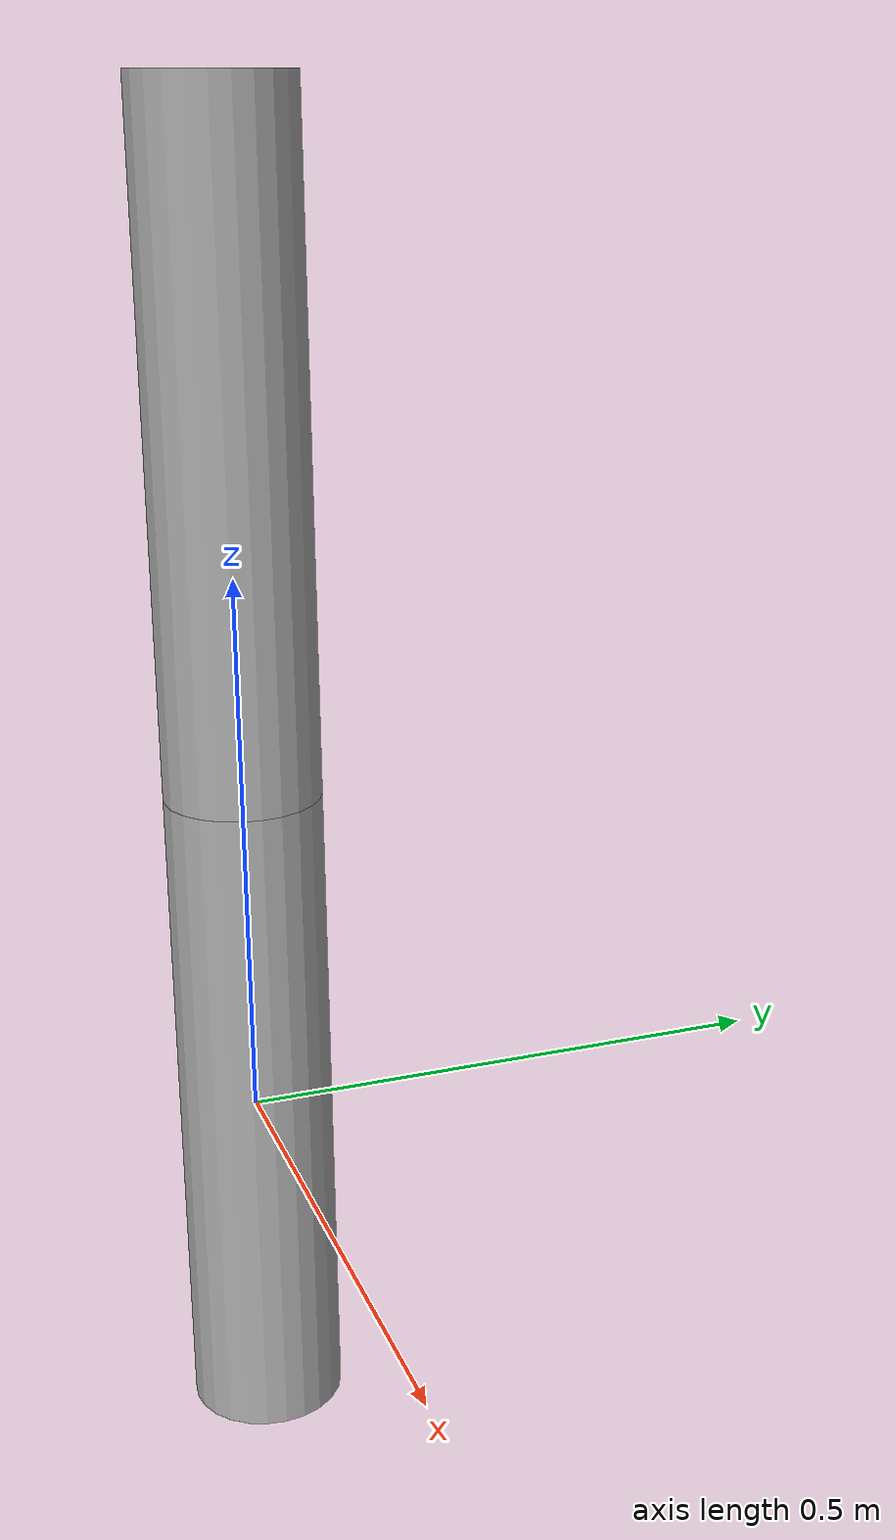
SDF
<?xml version="1.0" encoding="UTF-8"?>
<sdf version='1.8'>
  <model name='rocket_base'>
    <pose>0 0 0 0 0 0</pose>
    <link name='rocket_base_link'>
      <pose>0 0 0 0 0 0</pose>
      <inertial>
       <pose>0 0 0 0 0 0</pose>
       <mass>1.899</mass>
       <inertia>
         <ixx>0.14212</ixx>
         <ixy>0</ixy>
         <ixz>0</ixz>
         <iyy>0.14212</iyy>
         <iyz>0</iyz>
         <izz>0.00047</izz>
       </inertia>
      </inertial>
      <velocity_decay>
        <linear>0.01</linear>
        <angular>0.005</angular>
      </velocity_decay>
      <collision name='rocket_base_collision'>
        <pose>0 0 0 0 0 0</pose>
        <geometry>
          <cylinder>
            <radius>0.07036</radius>
            <length>0.6096</length>
          </cylinder>
        </geometry>
        <surface>
          <contact>
            <ode>
              <kp>1e6</kp>
              <kd>100.0</kd>
              <max_vel>0.01</max_vel>
              <min_depth>0.001</min_depth>
            </ode>
          </contact>
        </surface>
      </collision>
      <visual name='rocket_base_visual'>
        <pose>0 0 0 0 0 0</pose>
        <geometry>
          <cylinder>
            <radius>0.07036</radius>
            <length>0.6096</length>
          </cylinder>
       </geometry>
      </visual>
    </link>

    <link name='rocket_payload_link'>
      <pose>0 0 0.6096 0 0 0</pose>
      <inertial>
        <pose>0 0 0 0 0 0</pose>
        <mass>0.425</mass>
        <inertia>
          <ixx>0.01463</ixx>
          <ixy>0</ixy>
          <ixz>0</ixz>
          <iyy>0.01463</iyy>
          <iyz>0</iyz>
          <izz>0.001992</izz>
        </inertia>
      </inertial>
      <collision name='rocket_payload_collsion_wall_0'>
        <pose>0 0.068429 0 0 0 0</pose>
        <geometry>
          <box>
            <size>0.140716 0.003858 0.6096</size>
          </box>
        </geometry>
        <surface>
          <contact>
            <ode>
              <kp>1e6</kp>
              <kd>100.0</kd>
              <max_vel>0.01</max_vel>
              <min_depth>0.001</min_depth>
            </ode>
          </contact>
        </surface>
      </collision>
      <collision name='rocket_payload_collsion_wall_1'>
        <pose>-0.068429 0 0 0 0 1.57</pose>
        <geometry>
          <box>
            <size>0.140716 0.003858 0.6096</size>
          </box>
        </geometry>
        <surface>
          <contact>
            <ode>
              <kp>1e6</kp>
              <kd>100.0</kd>
              <max_vel>0.01</max_vel>
              <min_depth>0.001</min_depth>
            </ode>
          </contact>
        </surface>
      </collision>
      <collision name='rocket_payload_collsion_wall_2'>
        <pose>0 -0.068429 0 0 0 0</pose>
        <geometry>
          <box>
            <size>0.140716 0.003858 0.6096</size>
          </box>
        </geometry>
        <surface>
          <contact>
            <ode>
              <kp>1e6</kp>
              <kd>100.0</kd>
              <max_vel>0.01</max_vel>
              <min_depth>0.001</min_depth>
            </ode>
          </contact>
        </surface>
      </collision>
      <collision name='rocket_payload_collsion_wall_3'>
        <pose>0.068429 0 0 0 0 1.57</pose>
        <geometry>
          <box>
            <size>0.140716 0.003858 0.6096</size>
          </box>
        </geometry>
        <surface>
          <contact>
            <ode>
              <kp>1e6</kp>
              <kd>100.0</kd>
              <max_vel>0.01</max_vel>
              <min_depth>0.001</min_depth>
            </ode>
          </contact>
        </surface>
      </collision>
      <visual name='rocket_payload_visual'>
        <pose>0 0 0 0 0 0</pose>
        <geometry>
          <!-- use a hollow mesh in the future -->
          <cylinder>
            <radius>0.07036</radius>
            <length>0.6096</length>
          </cylinder>
        </geometry>
      </visual>
    </link>

    <joint name='rocket_base_payload_joint' type='fixed'>
      <parent>rocket_base_link</parent>
      <child>rocket_payload_link</child>
    </joint>

    <plugin
      filename="gz-sim-detachable-joint-system"
      name="gz::sim::systems::DetachableJoint">
      <parent_link>rocket_payload_link</parent_link>
      <child_model>rocket_cone</child_model>
      <child_link>rocket_cone_link</child_link>
      <detach_topic>/rocket/cone/detach</detach_topic>
    </plugin>

    <plugin
      filename="gz-sim-detachable-joint-system"
      name="gz::sim::systems::DetachableJoint">
      <parent_link>rocket_payload_link</parent_link>
      <child_model>container</child_model>
      <child_link>container_link</child_link>
      <detach_topic>/rocket/container/detach</detach_topic>
    </plugin>

    <plugin
      filename="gz-sim-pose-publisher-system"
      name="gz::sim::systems::PosePublisher">
      <publish_model_pose>true</publish_model_pose>
      <publish_link_pose>false</publish_link_pose>
      <use_pose_vector_msg>false</use_pose_vector_msg>
      <update_frequency>50</update_frequency>
    </plugin>

    <plugin filename="libJ425R.so" name="cansat::J425R"/>
    <plugin filename="libRocketRecovery.so" name="cansat::RocketRecovery"/>
  </model>
</sdf>
